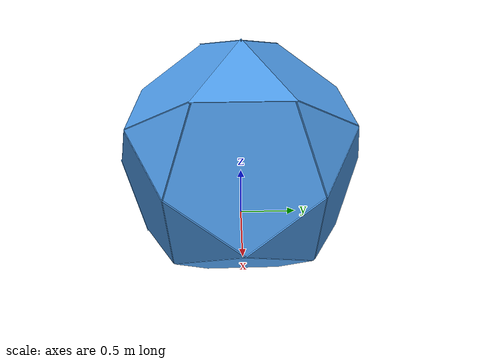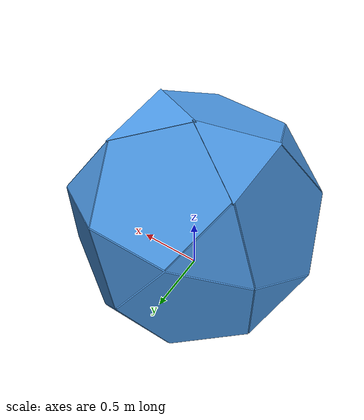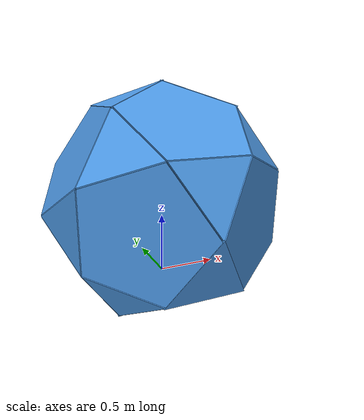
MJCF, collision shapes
<mujoco model="anymal_s">
  <compiler angle="radian" meshdir="assets" texturedir="assets" autolimits="true"/>
  <option>
    <flag filterparent="disable"/>
  </option>

  <default>
    <default class="anymal_c">
      <default class="visual">
        <geom type="mesh" contype="0" conaffinity="0" group="2"/>
        <default class="visual_zflip">
          <geom quat="0 0 0 1"/>
        </default>
      </default>
      <default class="collision">
        <geom group="3" type="cylinder" contype="1" conaffinity="1"/>
        <default class="foot">
          <geom type="sphere" size="0.03"/>
        </default>
      </default>
      <default class="shell_strut">
        <geom group="3" type="capsule" contype="1" conaffinity="1" size="0.02" rgba="0.3 0.6 0.9 0.6"/>
      </default>
    </default>
  </default>

  <asset>
    <material name="black_plastic" rgba="0.007 0.007 0.007 1"/>
    <material name="green" rgba="0.052 0.178 0.033 1"/>
    <material name="red" rgba="0.178 0.006 0.005 1"/>
    <material name="yellow" rgba="0.178 0.119 0.006 1"/>
    <material name="lwl" rgba="0.8 0.8 0.8 1"/>
    <material name="base" texture="base"/>
    <material name="top_shell" texture="top_shell"/>
    <material name="bottom_shell" texture="bottom_shell"/>
    <material name="hip_l" texture="hip_l"/>
    <material name="thigh" texture="thigh"/>
    <material name="shank_l" texture="shank_l"/>
    <material name="foot" texture="foot"/>
    <material name="hip_r" texture="hip_r"/>
    <material name="shank" texture="shank_r"/>
    <material name="hatch" texture="hatch"/>
    <material name="remote" texture="remote"/>
    <material name="handle" texture="handle"/>
    <material name="face" texture="face"/>
    <material name="depth_camera" texture="depth_camera"/>
    <material name="wide_angle_camera" texture="wide_angle_camera"/>
    <material name="battery" texture="battery"/>
    <material name="lidar_cage" texture="lidar_cage"/>
    <material name="lidar" texture="lidar"/>
    <material name="drive" texture="drive"/>
    <material name="shell_material" rgba="0.3 0.6 0.9 0.3" specular="0.5" shininess="0.3"/>

    <texture type="2d" name="base" file="base.png"/>
    <texture type="2d" name="top_shell" file="top_shell.png"/>
    <texture type="2d" name="bottom_shell" file="bottom_shell.png"/>
    <texture type="2d" name="remote" file="remote.png"/>
    <texture type="2d" name="hatch" file="hatch.png"/>
    <texture type="2d" name="handle" file="handle.png"/>
    <texture type="2d" name="face" file="face.png"/>
    <texture type="2d" name="battery" file="battery.png"/>
    <texture type="2d" name="lidar_cage" file="lidar_cage.png"/>
    <texture type="2d" name="depth_camera" file="depth_camera.png"/>
    <texture type="2d" name="wide_angle_camera" file="wide_angle_camera.png"/>
    <texture type="2d" name="lidar" file="lidar.png"/>
    <texture type="2d" name="drive" file="drive.png"/>
    <texture type="2d" name="hip_l" file="hip_l.png"/>
    <texture type="2d" name="shank_l" file="shank_l.png"/>
    <texture type="2d" name="foot" file="foot.png"/>
    <texture type="2d" name="thigh" file="thigh.png"/>
    <texture type="2d" name="shank_r" file="shank_r.png"/>
    <texture type="2d" name="hip_r" file="hip_r.png"/>

    <mesh file="base_0.obj"/>
    <mesh file="base_1.obj"/>
    <mesh file="base_2.obj"/>
    <mesh file="base_3.obj"/>
    <mesh file="base_4.obj"/>
    <mesh file="base_5.obj"/>
    <mesh file="top_shell.obj"/>
    <mesh file="bottom_shell.obj"/>
    <mesh file="remote.obj"/>
    <mesh file="handle.obj"/>
    <mesh file="face.obj"/>
    <mesh file="wide_angle_camera.obj"/>
    <mesh file="depth_camera.obj"/>
    <mesh file="battery.obj"/>
    <mesh file="lidar_cage.obj"/>
    <mesh file="lidar.obj"/>
    <mesh file="drive.obj"/>
    <mesh file="hip_l.obj"/>
    <mesh file="thigh.obj"/>
    <mesh file="shank_l.obj"/>
    <mesh file="foot.obj"/>
    <mesh file="hip_r.obj"/>
    <mesh file="hatch.obj"/>
    <mesh file="shank_r.obj"/>
    <mesh name="icosidodecahedron" file="icosidodecahedron.obj"/>
    <mesh file="shell_tri_0.obj"/>
    <mesh file="shell_tri_1.obj"/>
    <mesh file="shell_tri_2.obj"/>
    <mesh file="shell_tri_3.obj"/>
    <mesh file="shell_tri_4.obj"/>
    <mesh file="shell_tri_5.obj"/>
    <mesh file="shell_tri_6.obj"/>
    <mesh file="shell_tri_7.obj"/>
    <mesh file="shell_tri_8.obj"/>
    <mesh file="shell_tri_9.obj"/>
    <mesh file="shell_tri_10.obj"/>
    <mesh file="shell_tri_11.obj"/>
    <mesh file="shell_tri_12.obj"/>
    <mesh file="shell_tri_13.obj"/>
    <mesh file="shell_tri_14.obj"/>
    <mesh file="shell_tri_15.obj"/>
    <mesh file="shell_tri_16.obj"/>
    <mesh file="shell_tri_17.obj"/>
    <mesh file="shell_tri_18.obj"/>
    <mesh file="shell_tri_19.obj"/>
    <mesh file="shell_pent_0.obj"/>
    <mesh file="shell_pent_1.obj"/>
    <mesh file="shell_pent_2.obj"/>
    <mesh file="shell_pent_3.obj"/>
    <mesh file="shell_pent_4.obj"/>
    <mesh file="shell_pent_5.obj"/>
    <mesh file="shell_pent_6.obj"/>
    <mesh file="shell_pent_7.obj"/>
    <mesh file="shell_pent_8.obj"/>
    <mesh file="shell_pent_9.obj"/>
    <mesh file="shell_pent_10.obj"/>
    <mesh file="shell_pent_11.obj"/>
  </asset>

  <worldbody>
    <light name="spotlight" mode="targetbodycom" target="base" pos="0 -1 2" cutoff="30"/>
    <body name="base" pos="0 0 0.62" quat="0 0 0 1" childclass="anymal_c">
      <freejoint name="floating_base_joint"/>
      <inertial mass="19.2035" pos="0.0025 0 0.0502071" quat="0.5 0.5 0.5 0.5" diaginertia="0.639559 0.624031 0.217374"/>
      <site name="imu" pos="0 0 0" group="5"/>
      <geom mesh="base_0" material="green" class="visual"/>
      <geom mesh="base_1" material="yellow" class="visual"/>
      <geom mesh="base_2" material="red" class="visual"/>
      <geom mesh="base_3" material="black_plastic" class="visual"/>
      <geom mesh="base_4" material="lwl" class="visual"/>
      <geom mesh="base_5" material="base" class="visual"/>
      <geom name="base_collision0" class="collision" size="0.29 0.07 0.09" type="box"/>
      <geom name="base_collision1" class="collision" size="0.09 0.0725" pos="0.2175 0.07 0" quat="1 0 1 0"/>
      <geom name="base_collision2" class="collision" size="0.09 0.0725" pos="-0.2175 0.07 0" quat="1 0 1 0"/>
      <geom name="base_collision3" class="collision" size="0.09 0.0725" pos="0.2175 -0.07 0" quat="1 0 1 0"/>
      <geom name="base_collision4" class="collision" size="0.09 0.0725" pos="-0.2175 -0.07 0" quat="1 0 1 0"/>
      <geom material="top_shell" mesh="top_shell" class="visual"/>
      <geom material="bottom_shell" mesh="bottom_shell" class="visual"/>
      <geom material="remote" mesh="remote" class="visual"/>
      <geom material="handle" mesh="handle" class="visual"/>
      <geom pos="0.4145 0 0" material="face" mesh="face" class="visual"/>
      <geom name="base_collision5" class="collision" size="0.055 0.07 0.09" pos="0.4695 0 0" type="box"/>
      <geom name="base_collision6" class="collision" size="0.09 0.055" pos="0.4695 0.07 0" quat="1 0 1 0"/>
      <geom name="base_collision7" class="collision" size="0.09 0.055" pos="0.4695 -0.07 0" quat="1 0 1 0"/>
      <geom pos="0.46165 0 -0.0292" quat="0.965926 0 0.258819 0" material="depth_camera" mesh="depth_camera"
        class="visual"/>
      <geom pos="0.513 0 0.01497" material="wide_angle_camera" mesh="wide_angle_camera" class="visual"/>
      <geom pos="-0.4145 0 0" material="face" mesh="face" class="visual_zflip"/>
      <geom name="base_collision8" class="collision" size="0.055 0.07 0.09" pos="-0.4695 0 0" quat="0 0 0 1" type="box"/>
      <geom name="base_collision9" class="collision" size="0.09 0.055" pos="-0.4695 -0.07 0" quat="0 -1 0 1"/>
      <geom name="base_collision10" class="collision" size="0.09 0.055" pos="-0.4695 0.07 0" quat="0 -1 0 1"/>
      <geom pos="-0.46165 0 -0.0292" quat="0 -0.258819 0 0.965926" material="depth_camera" mesh="depth_camera"
        class="visual"/>
      <geom pos="-0.513 0 0.01497" material="wide_angle_camera" mesh="wide_angle_camera" class="visual_zflip"/>
      <geom material="battery" mesh="battery" class="visual"/>
      <geom pos="0 0.07646 0.02905" quat="0.683013 -0.183013 0.183013 0.683013" material="depth_camera"
        mesh="depth_camera" class="visual"/>
      <geom pos="0 -0.07646 0.02905" quat="0.683013 0.183013 0.183013 -0.683013" material="depth_camera"
        mesh="depth_camera" class="visual"/>
      <geom pos="-0.364 0 0.0735" material="lidar_cage" mesh="lidar_cage" class="visual"/>
      <geom name="base_collision11" class="collision" size="0.07 0.06" pos="-0.364 0 0.1335"/>
      <geom pos="-0.364 0 0.1422" quat="1 0 0 -1" material="lidar" mesh="lidar" class="visual"/>
      <geom pos="0.2999 0.104 0" quat="0.258819 0.965926 0 0" material="drive" mesh="drive" class="visual"/>
      <geom pos="0.2999 -0.104 0" quat="0.258819 -0.965926 0 0" material="drive" mesh="drive" class="visual"/>
      <geom pos="-0.2999 0.104 0" quat="0 0 0.965926 -0.258819" material="drive" mesh="drive" class="visual"/>
      <geom pos="-0.2999 -0.104 0" quat="0 0 -0.965926 -0.258819" material="drive" mesh="drive" class="visual"/>
      <geom pos="0.116 0 0.073" material="hatch" mesh="hatch" class="visual"/>

      <!-- Icosidodecahedron shell: child of base with relative joints for independent motion -->
      <body name="shell" pos="0 0 0">
        <joint name="shell_tx" type="slide" axis="1 0 0" damping="10"/>
        <joint name="shell_ty" type="slide" axis="0 1 0" damping="10"/>
        <joint name="shell_tz" type="slide" axis="0 0 1" damping="10"/>
        <joint name="shell_rx" type="hinge" axis="1 0 0" damping="10"/>
        <joint name="shell_ry" type="hinge" axis="0 1 0" damping="10"/>
        <joint name="shell_rz" type="hinge" axis="0 0 1" damping="10"/>
        <inertial mass="0.5" pos="0 0 0" diaginertia="0.4 0.4 0.4"/>
        <!-- 32 face plate collision geoms (20 triangles + 12 pentagons) -->
        <geom name="shell_face_0" type="mesh" mesh="shell_tri_0" contype="1" conaffinity="1" group="3" rgba="0.3 0.6 0.9 0.3"/>
        <geom name="shell_face_1" type="mesh" mesh="shell_tri_1" contype="1" conaffinity="1" group="3" rgba="0.3 0.6 0.9 0.3"/>
        <geom name="shell_face_2" type="mesh" mesh="shell_tri_2" contype="1" conaffinity="1" group="3" rgba="0.3 0.6 0.9 0.3"/>
        <geom name="shell_face_3" type="mesh" mesh="shell_tri_3" contype="1" conaffinity="1" group="3" rgba="0.3 0.6 0.9 0.3"/>
        <geom name="shell_face_4" type="mesh" mesh="shell_tri_4" contype="1" conaffinity="1" group="3" rgba="0.3 0.6 0.9 0.3"/>
        <geom name="shell_face_5" type="mesh" mesh="shell_tri_5" contype="1" conaffinity="1" group="3" rgba="0.3 0.6 0.9 0.3"/>
        <geom name="shell_face_6" type="mesh" mesh="shell_tri_6" contype="1" conaffinity="1" group="3" rgba="0.3 0.6 0.9 0.3"/>
        <geom name="shell_face_7" type="mesh" mesh="shell_tri_7" contype="1" conaffinity="1" group="3" rgba="0.3 0.6 0.9 0.3"/>
        <geom name="shell_face_8" type="mesh" mesh="shell_tri_8" contype="1" conaffinity="1" group="3" rgba="0.3 0.6 0.9 0.3"/>
        <geom name="shell_face_9" type="mesh" mesh="shell_tri_9" contype="1" conaffinity="1" group="3" rgba="0.3 0.6 0.9 0.3"/>
        <geom name="shell_face_10" type="mesh" mesh="shell_tri_10" contype="1" conaffinity="1" group="3" rgba="0.3 0.6 0.9 0.3"/>
        <geom name="shell_face_11" type="mesh" mesh="shell_tri_11" contype="1" conaffinity="1" group="3" rgba="0.3 0.6 0.9 0.3"/>
        <geom name="shell_face_12" type="mesh" mesh="shell_tri_12" contype="1" conaffinity="1" group="3" rgba="0.3 0.6 0.9 0.3"/>
        <geom name="shell_face_13" type="mesh" mesh="shell_tri_13" contype="1" conaffinity="1" group="3" rgba="0.3 0.6 0.9 0.3"/>
        <geom name="shell_face_14" type="mesh" mesh="shell_tri_14" contype="1" conaffinity="1" group="3" rgba="0.3 0.6 0.9 0.3"/>
        <geom name="shell_face_15" type="mesh" mesh="shell_tri_15" contype="1" conaffinity="1" group="3" rgba="0.3 0.6 0.9 0.3"/>
        <geom name="shell_face_16" type="mesh" mesh="shell_tri_16" contype="1" conaffinity="1" group="3" rgba="0.3 0.6 0.9 0.3"/>
        <geom name="shell_face_17" type="mesh" mesh="shell_tri_17" contype="1" conaffinity="1" group="3" rgba="0.3 0.6 0.9 0.3"/>
        <geom name="shell_face_18" type="mesh" mesh="shell_tri_18" contype="1" conaffinity="1" group="3" rgba="0.3 0.6 0.9 0.3"/>
        <geom name="shell_face_19" type="mesh" mesh="shell_tri_19" contype="1" conaffinity="1" group="3" rgba="0.3 0.6 0.9 0.3"/>
        <geom name="shell_face_20" type="mesh" mesh="shell_pent_0" contype="1" conaffinity="1" group="3" rgba="0.3 0.6 0.9 0.3"/>
        <geom name="shell_face_21" type="mesh" mesh="shell_pent_1" contype="1" conaffinity="1" group="3" rgba="0.3 0.6 0.9 0.3"/>
        <geom name="shell_face_22" type="mesh" mesh="shell_pent_2" contype="1" conaffinity="1" group="3" rgba="0.3 0.6 0.9 0.3"/>
        <geom name="shell_face_23" type="mesh" mesh="shell_pent_3" contype="1" conaffinity="1" group="3" rgba="0.3 0.6 0.9 0.3"/>
        <geom name="shell_face_24" type="mesh" mesh="shell_pent_4" contype="1" conaffinity="1" group="3" rgba="0.3 0.6 0.9 0.3"/>
        <geom name="shell_face_25" type="mesh" mesh="shell_pent_5" contype="1" conaffinity="1" group="3" rgba="0.3 0.6 0.9 0.3"/>
        <geom name="shell_face_26" type="mesh" mesh="shell_pent_6" contype="1" conaffinity="1" group="3" rgba="0.3 0.6 0.9 0.3"/>
        <geom name="shell_face_27" type="mesh" mesh="shell_pent_7" contype="1" conaffinity="1" group="3" rgba="0.3 0.6 0.9 0.3"/>
        <geom name="shell_face_28" type="mesh" mesh="shell_pent_8" contype="1" conaffinity="1" group="3" rgba="0.3 0.6 0.9 0.3"/>
        <geom name="shell_face_29" type="mesh" mesh="shell_pent_9" contype="1" conaffinity="1" group="3" rgba="0.3 0.6 0.9 0.3"/>
        <geom name="shell_face_30" type="mesh" mesh="shell_pent_10" contype="1" conaffinity="1" group="3" rgba="0.3 0.6 0.9 0.3"/>
        <geom name="shell_face_31" type="mesh" mesh="shell_pent_11" contype="1" conaffinity="1" group="3" rgba="0.3 0.6 0.9 0.3"/>
        <!-- Semi-transparent visual shell -->
        <geom name="shell_visual" type="mesh" mesh="icosidodecahedron" material="shell_material"
          contype="0" conaffinity="0" group="2"/>
      </body>

      <body name="LF_HIP" pos="0.2999 0.104 0" quat="0.258819 0.965926 0 0">
        <inertial mass="2.781" pos="0.0566606 -0.015294 -0.00829784" quat="-0.127978 0.709783 -0.135278 0.679359"
          diaginertia="0.00585729 0.00491868 0.00329081"/>
        <joint name="LF_HAA" axis="1 0 0" range="-0.72 0.49"/>
        <geom quat="0.258819 -0.965926 0 0" material="hip_l" mesh="hip_l" class="visual"/>
        <geom pos="0.0599 -0.0725816 -0.041905" quat="0.183013 -0.683013 0.683013 0.183013" material="drive"
          mesh="drive" class="visual"/>
        <geom name="LF_hip_collision" class="collision" size="0.05 0.07" pos="0.0599 -0.0119598 -0.006905"
          quat="-0.353553 -0.612372 0.612372 -0.353553"/>
        <body name="LF_THIGH" pos="0.0599 -0.0725816 -0.041905" quat="0.183013 -0.683013 0.683013 0.183013">
          <inertial mass="3.071" pos="0.0308147 4.64995e-05 -0.245696" quat="0.993166 -0.00515309 -0.0806592 0.0841972"
            diaginertia="0.03025 0.0298943 0.00418465"/>
          <joint name="LF_HFE" axis="1 0 0" range="-9.42478 9.42478"/>
          <geom quat="1 0 0 -1" material="thigh" mesh="thigh" class="visual"/>
          <geom name="LF_thigh_collision0" class="collision" size="0.065 0.04" pos="0.04 0 0" quat="0.5 0.5 -0.5 -0.5"/>
          <geom name="LF_thigh_collision1" class="collision" size="0.0375 0.03 0.141314" pos="0.03 0 -0.141314" quat="1 0 0 -1" type="box"/>
          <geom pos="0.1003 0 -0.285" material="drive" mesh="drive" class="visual"/>
          <geom name="LF_thigh_collision2" class="collision" size="0.05 0.07" pos="0.0303 0 -0.285" quat="1 0 1 0"/>
          <body name="LF_SHANK" pos="0.1003 0 -0.285">
            <inertial mass="0.58842" pos="0.005462 -0.0612528 -0.0806598"
              quat="0.992934 -0.115904 -0.00105487 -0.0254421" diaginertia="0.0101637 0.00923838 0.00111927"/>
            <joint name="LF_KFE" axis="1 0 0" range="-9.42478 9.42478"/>
            <site name="LF" pos="0.01305 -0.08795 -0.31547" type="sphere" size="0.023" group="5"/>
            <geom quat="1 0 0 -1" material="shank_l" mesh="shank_l" class="visual"/>
            <geom name="LF_shank_collision0" class="collision" size="0.06 0.02" pos="0.02 0 0" quat="0.5 0.5 -0.5 -0.5"/>
            <geom name="LF_shank_collision1" class="collision" size="0.057499 0.03375 0.019" pos="0.02 -0.057499 0" quat="0.5 0.5 -0.5 -0.5"
              type="box"/>
            <geom pos="0.01305 -0.08795 -0.33797" quat="0.382683 0 0 -0.92388" material="foot" mesh="foot"
              class="visual"/>
            <geom name="LF_shank_collision2" class="collision" size="0.0175 0.141252" pos="0.01305 -0.08795 -0.168985" quat="1 0 0 -1"/>
            <geom name="LF_foot" class="foot" pos="0.01305 -0.08795 -0.31547" quat="1 0 0 -1"/>
          </body>
        </body>
      </body>
      <body name="RF_HIP" pos="0.2999 -0.104 0" quat="0.258819 -0.965926 0 0">
        <inertial mass="2.781" pos="0.0567633 0.015294 -0.00829784" quat="0.13524 0.679072 0.127985 0.710065"
          diaginertia="0.00585928 0.0049205 0.00329064"/>
        <joint name="RF_HAA" axis="1 0 0" range="-0.49 0.72"/>
        <geom quat="0.258819 0.965926 0 0" material="hip_r" mesh="hip_r" class="visual"/>
        <geom pos="0.0599 0.0725816 -0.041905" quat="0.183013 0.683013 0.683013 -0.183013" material="drive" mesh="drive"
          class="visual"/>
        <geom name="RF_hip_collision" class="collision" size="0.05 0.07" pos="0.0599 0.0119598 -0.006905"
          quat="-0.353553 0.612372 0.612372 0.353553"/>
        <body name="RF_THIGH" pos="0.0599 0.0725816 -0.041905" quat="0.183013 0.683013 0.683013 -0.183013">
          <inertial mass="3.071" pos="0.0308147 4.64995e-05 -0.245696" quat="0.992775 -0.00512735 -0.0806685 0.0886811"
            diaginertia="0.0302511 0.0298933 0.0041845"/>
          <joint name="RF_HFE" axis="-1 0 0" range="-9.42478 9.42478"/>
          <geom quat="1 0 0 -1" material="thigh" mesh="thigh" class="visual"/>
          <geom name="RF_thigh_collision0" class="collision" size="0.065 0.04" pos="0.04 0 0" quat="0.5 0.5 0.5 0.5"/>
          <geom name="RF_thigh_collision1" class="collision" size="0.0375 0.03 0.141314" pos="0.03 0 -0.141314" quat="1 0 0 1" type="box"/>
          <geom pos="0.1003 0 -0.285" material="drive" mesh="drive" class="visual"/>
          <geom name="RF_thigh_collision2" class="collision" size="0.05 0.07" pos="0.0303 0 -0.285" quat="1 0 1 0"/>
          <body name="RF_SHANK" pos="0.1003 0 -0.285">
            <inertial mass="0.58842" pos="0.005462 0.0612528 -0.0806598" quat="0.992934 0.115904 -0.00105487 0.0254421"
              diaginertia="0.0101637 0.00923838 0.00111927"/>
            <joint name="RF_KFE" axis="-1 0 0" range="-9.42478 9.42478"/>
            <site name="RF" pos="0.01305 0.08795 -0.31547" type="sphere" size="0.023" group="5"/>
            <geom quat="1 0 0 1" material="shank" mesh="shank_r" class="visual"/>
            <geom name="RF_shank_collision0" class="collision" size="0.06 0.02" pos="0.02 0 0" quat="0.5 0.5 0.5 0.5"/>
            <geom name="RF_shank_collision1" class="collision" size="0.057499 0.03375 0.019" pos="0.02 0.057499 0" quat="0.5 0.5 0.5 0.5"
              type="box"/>
            <geom pos="0.01305 0.08795 -0.33797" quat="0.382683 0 0 0.92388" material="foot" mesh="foot" class="visual"/>
            <geom name="RF_shank_collision2" class="collision" size="0.0175 0.141252" pos="0.01305 0.08795 -0.168985" quat="1 0 0 1"/>
            <geom name="RF_foot" class="foot" pos="0.01305 0.08795 -0.31547" quat="1 0 0 1"/>
          </body>
        </body>
      </body>
      <body name="LH_HIP" pos="-0.2999 0.104 0" quat="0 0 0.965926 -0.258819">
        <inertial mass="2.781" pos="0.0567633 0.015294 -0.00829784" quat="0.13524 0.679072 0.127985 0.710065"
          diaginertia="0.00585928 0.0049205 0.00329064"/>
        <joint name="LH_HAA" axis="-1 0 0" range="-0.72 0.49"/>
        <geom quat="-0.258819 -0.965926 0 0" material="hip_r" mesh="hip_r" class="visual"/>
        <geom pos="0.0599 0.0725816 -0.041905" quat="0.183013 0.683013 0.683013 -0.183013" material="drive" mesh="drive"
          class="visual"/>
        <geom name="LH_hip_collision" class="collision" size="0.05 0.07" pos="0.0599 0.0119598 -0.006905"
          quat="-0.353553 0.612372 0.612372 0.353553"/>
        <body name="LH_THIGH" pos="0.0599 0.0725816 -0.041905" quat="0.183013 0.683013 0.683013 -0.183013">
          <inertial mass="3.071" pos="0.0308147 4.64995e-05 -0.245696" quat="0.992775 -0.00512735 -0.0806685 0.0886811"
            diaginertia="0.0302511 0.0298933 0.0041845"/>
          <joint name="LH_HFE" axis="1 0 0" range="-9.42478 9.42478"/>
          <geom quat="1 0 0 -1" material="thigh" mesh="thigh" class="visual"/>
          <geom name="LH_thigh_collision0" class="collision" size="0.065 0.04" pos="0.04 0 0" quat="0.5 0.5 -0.5 -0.5"/>
          <geom name="LH_thigh_collision1" class="collision" size="0.0375 0.03 0.141314" pos="0.03 0 -0.141314" quat="1 0 0 -1" type="box"/>
          <geom pos="0.1003 0 -0.285" material="drive" mesh="drive" class="visual"/>
          <geom name="LH_thigh_collision2" class="collision" size="0.05 0.07" pos="0.0303 0 -0.285" quat="1 0 1 0"/>
          <body name="LH_SHANK" pos="0.1003 0 -0.285">
            <inertial mass="0.58842" pos="0.005462 0.0612528 -0.0806598" quat="0.992934 0.115904 -0.00105487 0.0254421"
              diaginertia="0.0101637 0.00923838 0.00111927"/>
            <joint name="LH_KFE" axis="1 0 0" range="-9.42478 9.42478"/>
            <site name="LH" pos="0.01305 0.08795 -0.31547" type="sphere" size="0.023" group="5"/>
            <geom quat="-1 0 0 -1" material="shank" mesh="shank_r" class="visual"/>
            <geom name="LH_shank_collision0" class="collision" size="0.06 0.02" pos="0.02 0 0" quat="0.5 0.5 -0.5 -0.5"/>
            <geom name="LH_shank_collision1" class="collision" size="0.057499 0.03375 0.019" pos="0.02 0.057499 0" quat="0.5 0.5 -0.5 -0.5"
              type="box"/>
            <geom pos="0.01305 0.08795 -0.33797" quat="-0.382683 0 0 -0.92388" material="foot" mesh="foot"
              class="visual"/>
            <geom name="LH_shank_collision2" class="collision" size="0.0175 0.141252" pos="0.01305 0.08795 -0.168985" quat="1 0 0 -1"/>
            <geom name="LH_foot" class="foot" pos="0.01305 0.08795 -0.31547" quat="1 0 0 -1"/>
          </body>
        </body>
      </body>
      <body name="RH_HIP" pos="-0.2999 -0.104 0" quat="0 0 -0.965926 -0.258819">
        <inertial mass="2.781" pos="0.0566606 -0.015294 -0.00829784" quat="-0.127978 0.709783 -0.135278 0.679359"
          diaginertia="0.00585729 0.00491868 0.00329081"/>
        <joint name="RH_HAA" axis="-1 0 0" range="-0.49 0.72"/>
        <geom quat="-0.258819 0.965926 0 0" material="hip_l" mesh="hip_l" class="visual"/>
        <geom pos="0.0599 -0.0725816 -0.041905" quat="-0.183013 0.683013 -0.683013 -0.183013" material="drive"
          mesh="drive" class="visual"/>
        <geom name="RH_hip_collision" class="collision" size="0.05 0.07" pos="0.0599 -0.0119598 -0.006905"
          quat="0.353553 0.612372 -0.612372 0.353553"/>
        <body name="RH_THIGH" pos="0.0599 -0.0725816 -0.041905" quat="-0.183013 0.683013 -0.683013 -0.183013">
          <inertial mass="3.071" pos="0.0308147 4.64995e-05 -0.245696" quat="0.993166 -0.00515309 -0.0806592 0.0841972"
            diaginertia="0.03025 0.0298943 0.00418465"/>
          <joint name="RH_HFE" axis="-1 0 0" range="-9.42478 9.42478"/>
          <geom quat="1 0 0 -1" material="thigh" mesh="thigh" class="visual"/>
          <geom name="RH_thigh_collision0" class="collision" size="0.065 0.04" pos="0.04 0 0" quat="0.5 0.5 0.5 0.5"/>
          <geom name="RH_thigh_collision1" class="collision" size="0.0375 0.03 0.141314" pos="0.03 0 -0.141314" quat="1 0 0 1" type="box"/>
          <geom pos="0.1003 0 -0.285" material="drive" mesh="drive" class="visual"/>
          <geom name="RH_thigh_collision2" class="collision" size="0.05 0.07" pos="0.0303 0 -0.285" quat="1 0 1 0"/>
          <body name="RH_SHANK" pos="0.1003 0 -0.285">
            <inertial mass="0.58842" pos="0.005462 -0.0612528 -0.0806598"
              quat="0.992934 -0.115904 -0.00105487 -0.0254421" diaginertia="0.0101637 0.00923838 0.00111927"/>
            <joint name="RH_KFE" axis="-1 0 0" range="-9.42478 9.42478"/>
            <site name="RH" pos="0.01305 -0.08795 -0.31547" type="sphere" size="0.023" group="5"/>
            <geom quat="1 0 0 -1" material="shank_l" mesh="shank_l" class="visual"/>
            <geom name="RH_shank_collision0" class="collision" size="0.06 0.02" pos="0.02 0 0" quat="0.5 0.5 0.5 0.5"/>
            <geom name="RH_shank_collision1" class="collision" size="0.057499 0.03375 0.019" pos="0.02 -0.057499 0" quat="0.5 0.5 0.5 0.5"
              type="box"/>
            <geom pos="0.01305 -0.08795 -0.33797" quat="0.382683 0 0 -0.92388" material="foot" mesh="foot"
              class="visual"/>
            <geom name="RH_shank_collision2" class="collision" size="0.0175 0.141252" pos="0.01305 -0.08795 -0.168985" quat="1 0 0 1"/>
            <geom name="RH_foot" class="foot" pos="0.01305 -0.08795 -0.31547" quat="1 0 0 1"/>
          </body>
        </body>
      </body>
    </body>
  </worldbody>

  <contact>
    <!-- base <-> leg body excludes (parent-child, needed with filterparent disabled) -->
    <exclude body1="base" body2="LF_HIP"/>
    <exclude body1="base" body2="RF_HIP"/>
    <exclude body1="base" body2="LH_HIP"/>
    <exclude body1="base" body2="RH_HIP"/>
    <exclude body1="base" body2="LF_THIGH"/>
    <exclude body1="base" body2="RF_THIGH"/>
    <exclude body1="base" body2="LH_THIGH"/>
    <exclude body1="base" body2="RH_THIGH"/>
    <!-- HIP <-> THIGH and THIGH <-> SHANK excludes -->
    <exclude body1="LF_HIP" body2="LF_THIGH"/>
    <exclude body1="RF_HIP" body2="RF_THIGH"/>
    <exclude body1="LH_HIP" body2="LH_THIGH"/>
    <exclude body1="RH_HIP" body2="RH_THIGH"/>
    <exclude body1="LF_THIGH" body2="LF_SHANK"/>
    <exclude body1="RF_THIGH" body2="RF_SHANK"/>
    <exclude body1="LH_THIGH" body2="LH_SHANK"/>
    <exclude body1="RH_THIGH" body2="RH_SHANK"/>
  </contact>

  <sensor>
    <gyro name="imu_ang_vel" site="imu"/>
    <velocimeter name="imu_lin_vel" site="imu"/>
    <accelerometer name="imu_lin_acc" site="imu"/>
    <subtreeangmom name="root_angmom" body="base"/>
  </sensor>
</mujoco>
